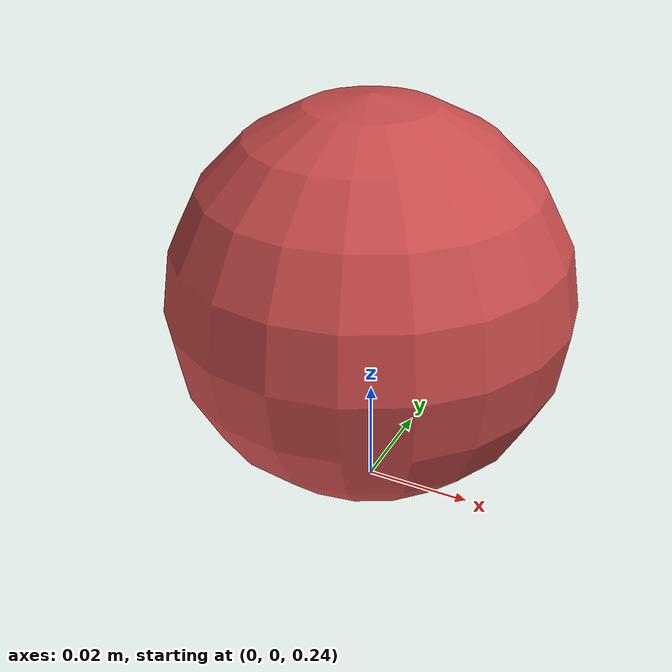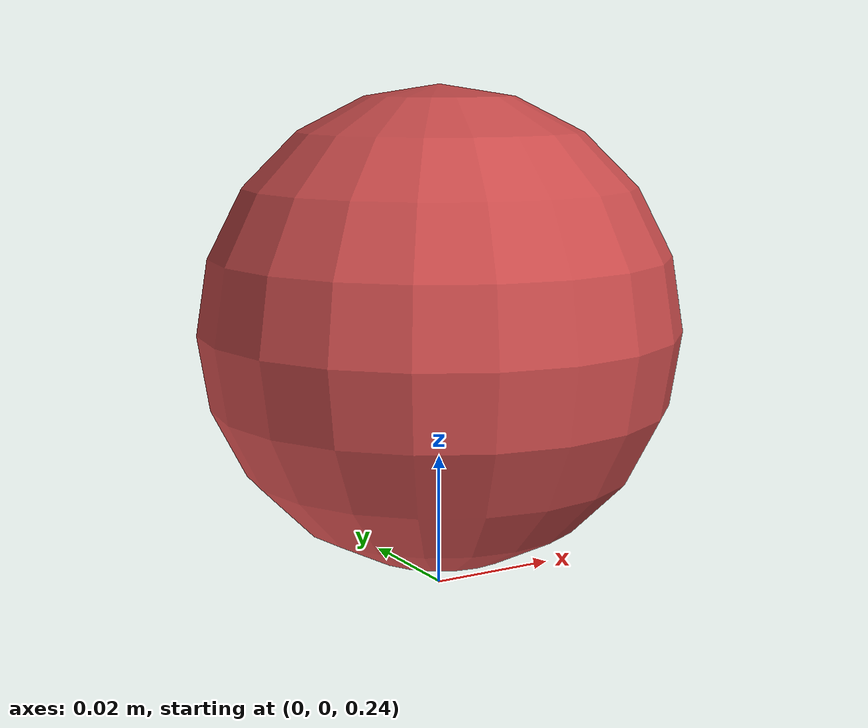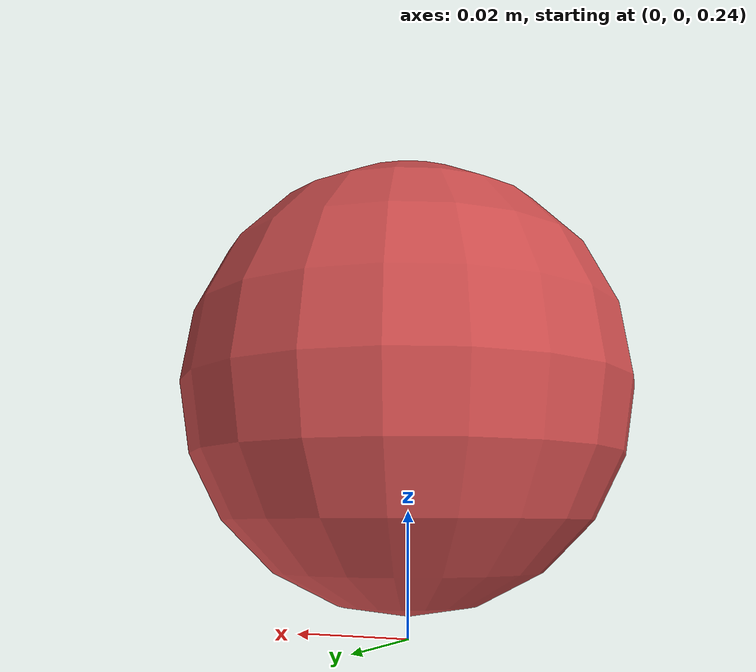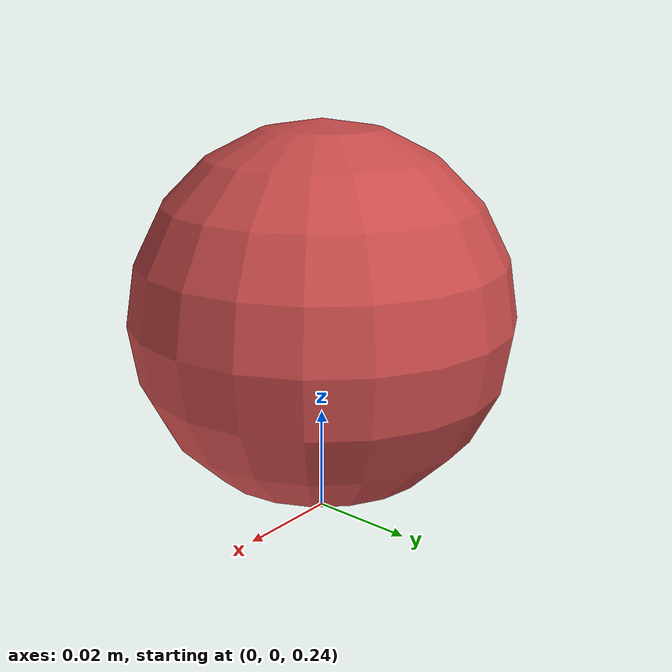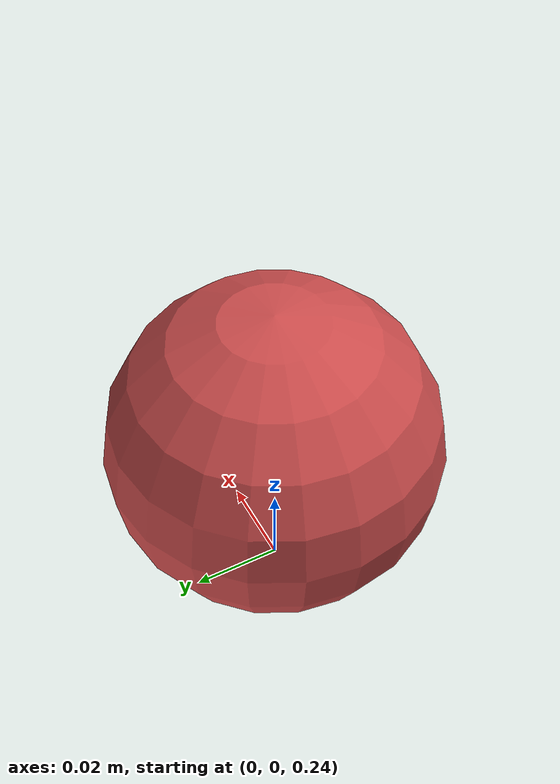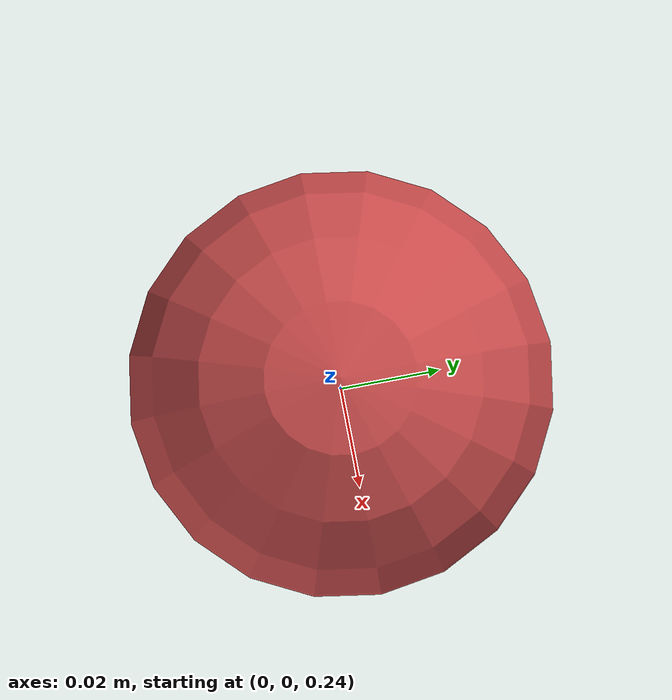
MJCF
<mujoco model="tap_000">
  <option timestep="0.001" gravity="0 0 -9.81"/>

  <visual>
    <headlight ambient="0.5 0.5 0.5"/>
  </visual>

  <asset>
    <texture name="grid" type="2d" builtin="checker" width="512" height="512" rgb1="0.2 0.3 0.4" rgb2="0.3 0.4 0.5"/>
    <material name="grid" texture="grid" texrepeat="1 1" reflectance="0.2"/>
    <material name="finger" rgba="0.8 0.3 0.3 1.0"/>
  </asset>

  <worldbody>
    <!-- Ground plane -->
    <geom name="floor" type="plane" size="2 2 0.1" material="grid"
          condim="6" friction="0.5962215492441076 0.005 0.0001" solref="0.02 1.371501869126235"/>

    <!-- Sphere -->
    <body name="fingertip" pos="0 0 0.28003207365245725">
      <freejoint/>
      <geom name="finger" type="sphere" size="0.03647795301463628" mass="0.05721540780084466" material="finger"
            condim="6" friction="0.5962215492441076 0.005 0.0001" solref="0.02 1.371501869126235"/>
      <site name="contact_site" pos="0 0 0" size="0.001"/>
    </body>
  </worldbody>

  <sensor>
    <touch name="finger_touch" site="contact_site"/>
    <framepos name="finger_pos" objtype="site" objname="contact_site"/>
    <framequat name="finger_quat" objtype="site" objname="contact_site"/>
    <framelinvel name="finger_vel" objtype="site" objname="contact_site"/>
  </sensor>
</mujoco>
